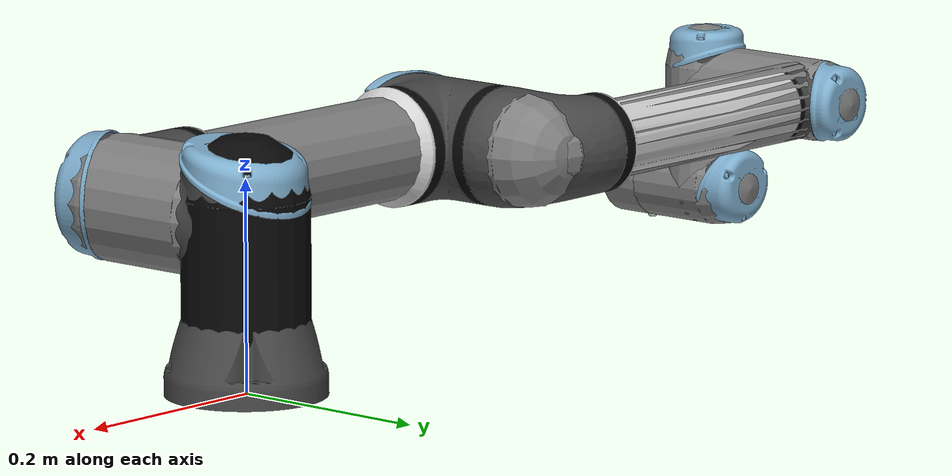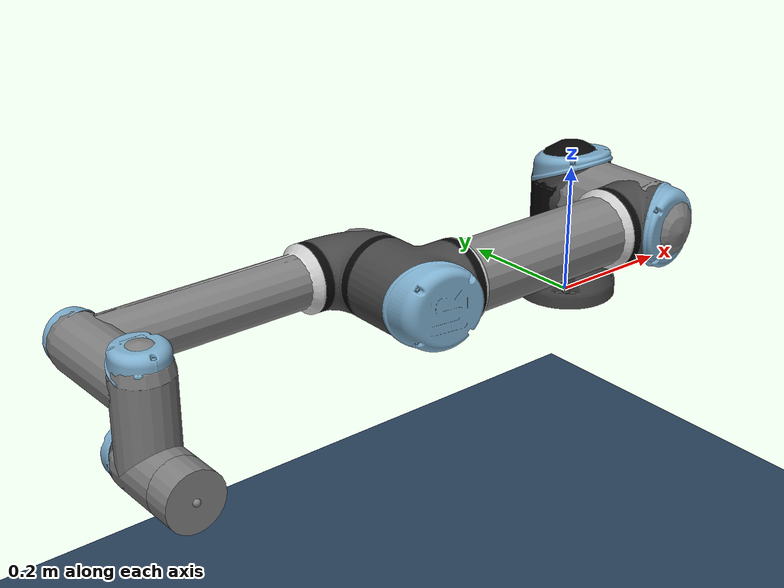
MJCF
<mujoco model="ur5e_right">
    <compiler angle="radian" meshdir="../meshes/" autolimits="true"/>
    <option integrator="RK4"/>
    <asset>
        <texture name="grid" type="2d" builtin="checker" rgb1=".1 .2 .3"
        rgb2=".2 .3 .4" width="300" height="300" mark="edge" markrgb=".2 .3 .4"/>
        <material name="grid" texture="grid" texrepeat="2 2" texuniform="true"
        reflectance=".2"/>
        <material name="black" rgba="0.033 0.033 0.033 1"/>
        <material name="jointgray" rgba="0.278 0.278 0.278 1"/>
        <material name="linkgray" rgba="0.82 0.82 0.82 1"/>
        <material name="urblue" rgba="0.49 0.678 0.8 1"/>
        <mesh name="base_0" file="base_0.obj"/>
        <mesh name="base_1" file="base_1.obj"/>
        <mesh name="shoulder_0" file="shoulder_0.obj"/>
        <mesh name="shoulder_1" file="shoulder_1.obj"/>
        <mesh name="shoulder_2" file="shoulder_2.obj"/>
        <mesh name="upperarm_0" file="upperarm_0.obj"/>
        <mesh name="upperarm_1" file="upperarm_1.obj"/>
        <mesh name="upperarm_2" file="upperarm_2.obj"/>
        <mesh name="upperarm_3" file="upperarm_3.obj"/>
        <mesh name="forearm_0" file="forearm_0.obj"/>
        <mesh name="forearm_1" file="forearm_1.obj"/>
        <mesh name="forearm_2" file="forearm_2.obj"/>
        <mesh name="forearm_3" file="forearm_3.obj"/>
        <mesh name="wrist1_0" file="wrist1_0.obj"/>
        <mesh name="wrist1_1" file="wrist1_1.obj"/>
        <mesh name="wrist1_2" file="wrist1_2.obj"/>
        <mesh name="wrist2_0" file="wrist2_0.obj"/>
        <mesh name="wrist2_1" file="wrist2_1.obj"/>
        <mesh name="wrist2_2" file="wrist2_2.obj"/>
        <mesh name="wrist3" file="wrist3.obj"/>
    </asset>
    <default>
        <joint damping="1"/>
    </default>
    <worldbody>
        <light pos="0 0 1" mode="trackcom" diffuse="1 1 1" />
        <geom name="ground" type="plane" pos="0 0 -.5" size="2 2 .1" material="grid" solimp=".99 .99 .01" solref=".001 1"/>
        <body name="arm_base" quat="0 0 0 -1">
            <!-- UR5e base visual -->
            <geom type="mesh" contype="0" conaffinity="0" group="1" material="black" mesh="base_0" />
            <geom type="mesh" material="black" mesh="base_0" />
            <geom type="mesh" contype="0" conaffinity="0" group="1" material="jointgray" mesh="base_1" />
            <geom type="mesh" material="jointgray" mesh="base_1" />
            <body name="shoulder_link" pos="0 0 0.163">
                <inertial mass="3.7" pos="0 0 0" diaginertia="0.0102675 0.0102675 0.00666"/>
                <joint name="shoulder_pan_joint" axis="0 0 1" limited="true" range="-3.1415 3.1415" damping="1" frictionloss="1"/>
                <geom type="mesh" contype="0" conaffinity="0" group="1" material="urblue" mesh="shoulder_0" />
                <geom type="mesh" material="urblue" mesh="shoulder_0" />
                <geom type="mesh" contype="0" conaffinity="0" group="1" material="black" mesh="shoulder_1" />
                <geom type="mesh" material="black" mesh="shoulder_1" />
                <geom type="mesh" contype="0" conaffinity="0" group="1" material="jointgray" mesh="shoulder_2" />
                <geom type="mesh" material="jointgray" mesh="shoulder_2" />
                <geom type="capsule" size="0.06 0.06" pos="0 0 -0.04" material="black" />
                <body name="upper_arm_link" pos="0 0.138 0" quat="1 0 1 0">
                    <inertial mass="8.393" pos="0 0 0.2125" diaginertia="0.133886 0.133886 0.0151074"/>
                    <joint name="shoulder_lift_joint" axis="0 1 0" limited="true" range="-3.1415 3.1415" damping="1" frictionloss="1"/>
                    <geom type="mesh" contype="0" conaffinity="0" group="1" material="linkgray" mesh="upperarm_0" />
                    <geom type="mesh" material="linkgray" mesh="upperarm_0" />
                    <geom type="mesh" contype="0" conaffinity="0" group="1" material="black" mesh="upperarm_1" />
                    <geom type="mesh" material="black" mesh="upperarm_1" />
                    <geom type="mesh" contype="0" conaffinity="0" group="1" material="jointgray" mesh="upperarm_2" />
                    <geom type="mesh" material="jointgray" mesh="upperarm_2" />
                    <geom type="mesh" contype="0" conaffinity="0" group="1" material="urblue" mesh="upperarm_3" />
                    <geom type="mesh" material="urblue" mesh="upperarm_3" />
                    <geom type="capsule" pos="0 -0.04 0" quat="1 1 0 0" size="0.06 0.06" />
                    <geom type="capsule" size="0.05 0.2" pos="0 0 0.2" />
                    <body name="forearm_link" pos="0 -0.131 0.425">
                        <inertial mass="2.275" pos="0 0 0.196" diaginertia="0.0311796 0.0311796 0.004095"/>
                        <joint name="elbow_joint" axis="0 1 0" limited="true" range="-3.1415 3.1415" damping="1" frictionloss="1"/>
                        <geom type="mesh" contype="0" conaffinity="0" group="1" material="urblue" mesh="forearm_0" />
                        <geom type="mesh" material="urblue" mesh="forearm_0" />
                        <geom type="mesh" contype="0" conaffinity="0" group="1" material="linkgray" mesh="forearm_1" />
                        <geom type="mesh" material="linkgray" mesh="forearm_1" />
                        <geom type="mesh" contype="0" conaffinity="0" group="1" material="black" mesh="forearm_2" />
                        <geom type="mesh" material="black" mesh="forearm_2" />
                        <geom type="mesh" contype="0" conaffinity="0" group="1" material="jointgray" mesh="forearm_3" />
                        <geom type="mesh" material="jointgray" mesh="forearm_3" />
                        <geom type="capsule" pos="0 0.08 0" quat="1 1 0 0" size="0.055 0.06" />
                        <geom type="capsule" size="0.038 0.19" pos="0 0 0.2" />
                        <body name="wrist_1_link" pos="0 0 0.392" quat="1 0 1 0">
                            <inertial mass="1.219" pos="0 0.127 0" diaginertia="0.0025599 0.0025599 0.0021942"/>
                            <joint name="wrist_1_joint" axis="0 1 0" limited="true" range="-3.1415 3.1415" damping="1" frictionloss="1"/>
                            <geom type="mesh" contype="0" conaffinity="0" group="1" material="black" mesh="wrist1_0" />
                            <geom type="mesh" material="black" mesh="wrist1_0" />
                            <geom type="mesh" contype="0" conaffinity="0" group="1" material="urblue" mesh="wrist1_1" />
                            <geom type="mesh" material="urblue" mesh="wrist1_1" />
                            <geom type="mesh" contype="0" conaffinity="0" group="1" material="jointgray" mesh="wrist1_2" />
                            <geom type="mesh" material="jointgray" mesh="wrist1_2" />
                            <geom type="capsule" pos="0 0.05 0" quat="1 1 0 0" size="0.04 0.07" />
                            <body name="wrist_2_link" pos="0 0.127 0">
                                <inertial mass="1.219" pos="0 0 0.1" diaginertia="0.0025599 0.0025599 0.0021942"/>
                                <joint name="wrist_2_joint" axis="0 0 1" limited="true" range="-3.1415 3.1415" damping="1" frictionloss="1"/>
                                <geom type="mesh" contype="0" conaffinity="0" group="1" material="black" mesh="wrist2_0" />
                                <geom type="mesh" material="black" mesh="wrist2_0" />
                                <geom type="mesh" contype="0" conaffinity="0" group="1" material="urblue" mesh="wrist2_1" />
                                <geom type="mesh" material="urblue" mesh="wrist2_1" />
                                <geom type="mesh" contype="0" conaffinity="0" group="1" material="jointgray" mesh="wrist2_2" />
                                <geom type="mesh" material="jointgray" mesh="wrist2_2" />
                                <geom type="capsule" size="0.04 0.06" pos="0 0 0.04" />
                                <geom type="capsule" pos="0 0.02 0.1" quat="1 1 0 0" size="0.04 0.04" />
                                <body name="wrist_3_link" pos="0 0 0.1">
                                    <inertial mass="0.1889" pos="0 0.0771683 0" quat="1 0 0 1" diaginertia="0.000132134 9.90863e-05 9.90863e-05"/>
                                    <joint name="wrist_3_joint" axis="0 1 0" limited="true" range="-3.1415 3.1415" damping="1" frictionloss="1"/>
                                    <geom type="mesh" contype="0" conaffinity="0" group="1" material="linkgray" mesh="wrist3" />
                                    <geom type="mesh" material="linkgray" mesh="wrist3" />
                                    <geom type="cylinder" pos="0 0.08 0" quat="1 1 0 0" size="0.04 0.02" />
                                    <site name="attachment_site" pos="0 0.1 0" quat="-1 1 0 0"/>
                                </body>
                            </body>
                        </body>
                    </body>
                </body>
            </body>
        </body>
    </worldbody>
    <contact>
    </contact>
    <actuator>
        <motor joint="shoulder_pan_joint" ctrlrange="-100 100" />
        <motor joint="shoulder_lift_joint" ctrlrange="-100 100" />
        <motor joint="elbow_joint" ctrlrange="-100 100" />
        <motor joint="wrist_1_joint" ctrlrange="-100 100" />
        <motor joint="wrist_2_joint" ctrlrange="-100 100" />
        <motor joint="wrist_3_joint" ctrlrange="-100 100" />
    </actuator>
</mujoco>
